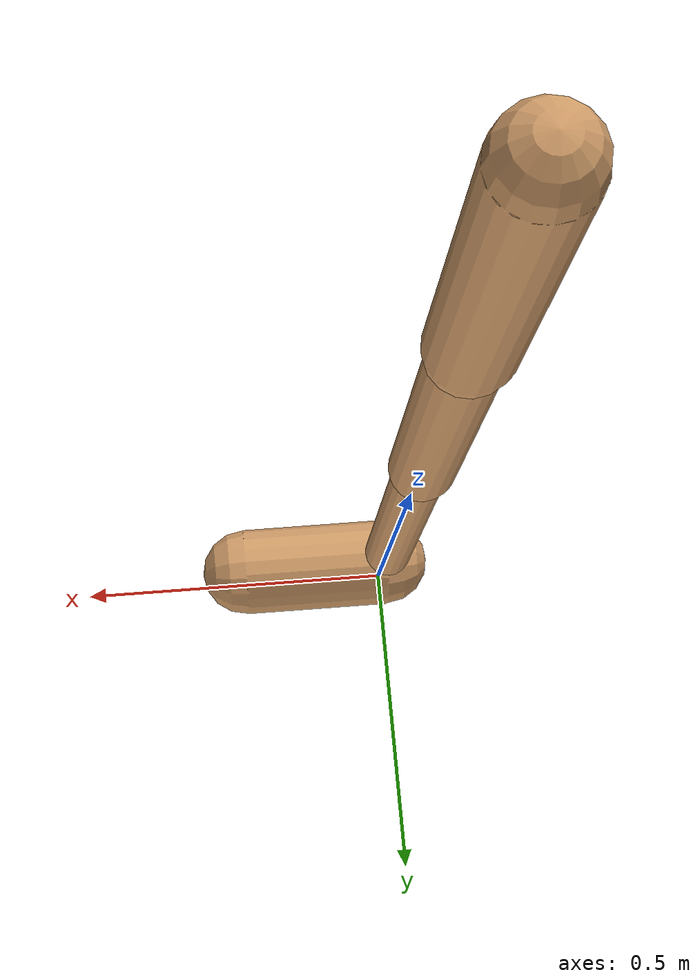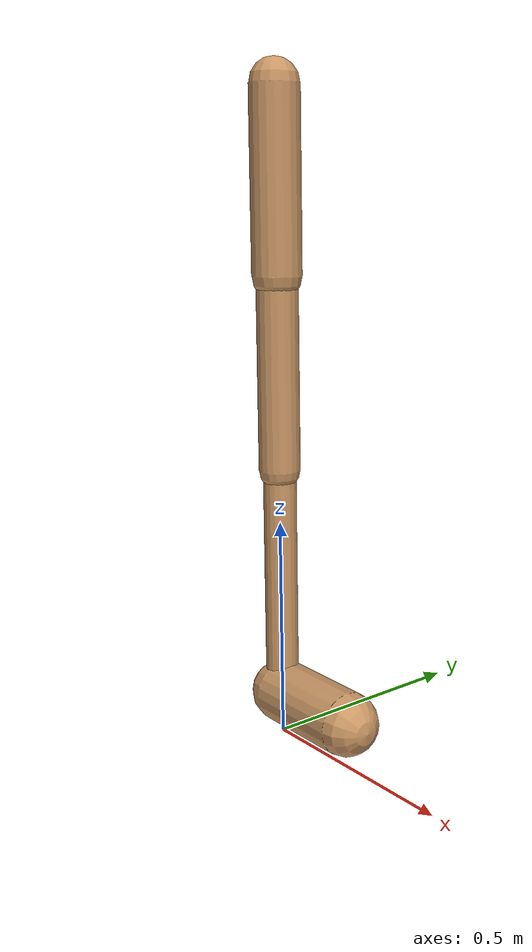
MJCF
<mujoco model="walker2d">
  <compiler angle="degree" coordinate="global" inertiafromgeom="true" />
  <default>
    <joint armature="0.01" damping=".1" limited="true" />
    <geom conaffinity="0" condim="3" contype="1" density="1000" friction="0.8 .1 .1" rgba="0.8 0.6 .4 1" />
  </default>
  <option integrator="RK4" timestep="0.002" />
  <worldbody>

    <body name="torso" pos="0 0 -0.04741376309037302">
      <joint armature="0" axis="1 0 0" damping="0" limited="false" name="ignorex" pos="0 0 0" stiffness="0" type="slide" />
      <joint armature="0" axis="0 0 1" damping="0" limited="false" name="ignorez" pos="0 0 0" ref="1.25" stiffness="0" type="slide" />
      <joint armature="0" axis="0 1 0" damping="0" limited="false" name="ignorey" pos="0 0 0" stiffness="0" type="hinge" />
      <geom fromto="0 0 1.45 0 0 1.05" name="torso_geom" size="0.05470083665024509" type="capsule" />
      <body name="thigh">
        <joint axis="0 -1 0" name="thigh_joint" pos="0 0 1.05" range="-150 0" type="hinge" />
        <geom fromto="0.0 0.0 1.05 0.0 0.0 0.6224591509375451" name="thigh_geom" size="0.045999263544737684" type="capsule" />
        <body name="leg" pos="0.0 0.0 0.022459150937545136">
          <joint axis="0 -1 0" name="leg_joint" pos="0 0 0.6" range="-150 0" type="hinge" />
          <geom fromto="0.0 0.0 0.6 0.0 0.0 0.12495461215282791" name="leg_geom" size="0.03679941083579014" type="capsule" />
          <body name="foot" pos="0.0 0.0 0.024954612152827904">
            <joint axis="0 -1 0" name="foot_joint" pos="0 0 0.1" range="-45 45" type="hinge" />
            <geom fromto="-0.0 0.0 0.1 0.23229378420591162 0.0 0.1" name="foot_geom" size="0.0698690891106237" type="capsule" />
          </body>
        </body>
      </body>

      <body name="thigh_left">
        <joint axis="0 -1 0" name="thigh_left_joint" pos="0 0 1.05" range="-150 0" type="hinge" />
        <geom fromto="0.0 0.0 1.05 0.0 0.0 0.6224591509375451" name="thigh_left_geom" rgba=".7 .3 .6 1" size="0.045999263544737684" type="capsule" />
        <body name="leg_left" pos="0.0 0.0 0.022459150937545136">
          <joint axis="0 -1 0" name="leg_left_joint" pos="0 0 0.6" range="-150 0" type="hinge" />
          <geom fromto="0.0 0.0 0.6 0.0 0.0 0.12495461215282791" name="leg_left_geom" rgba=".7 .3 .6 1" size="0.03679941083579014" type="capsule" />
          <body name="foot_left" pos="0.0 0.0 0.024954612152827904">
            <joint axis="0 -1 0" name="foot_left_joint" pos="0 0 0.1" range="-45 45" type="hinge" />
            <geom fromto="-0.0 0.0 0.1 0.23229378420591162 0.0 0.1" name="foot_left_geom" rgba=".7 .3 .6 1" size="0.0698690891106237" type="capsule" />
          </body>
        </body>
      </body>
    </body>
  </worldbody>
  <actuator>

    <motor ctrllimited="true" ctrlrange="-1.0 1.0" gear="100" joint="thigh_joint" />
    <motor ctrllimited="true" ctrlrange="-1.0 1.0" gear="100" joint="leg_joint" />
    <motor ctrllimited="true" ctrlrange="-1.0 1.0" gear="100" joint="foot_joint" />
    <motor ctrllimited="true" ctrlrange="-1.0 1.0" gear="100" joint="thigh_left_joint" />
    <motor ctrllimited="true" ctrlrange="-1.0 1.0" gear="100" joint="leg_left_joint" />
    <motor ctrllimited="true" ctrlrange="-1.0 1.0" gear="100" joint="foot_left_joint" />

  </actuator>
</mujoco>
